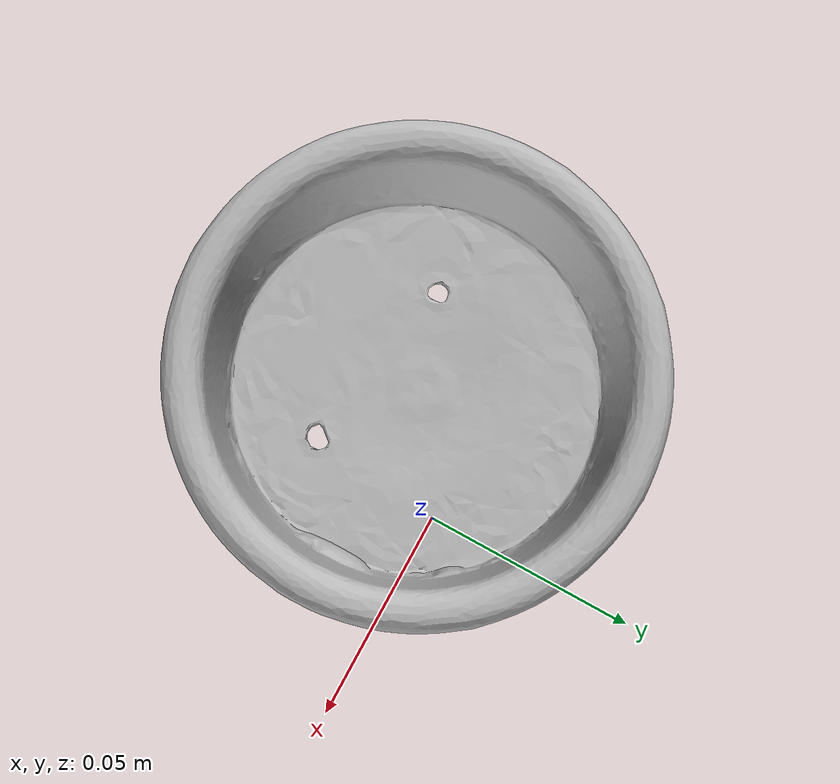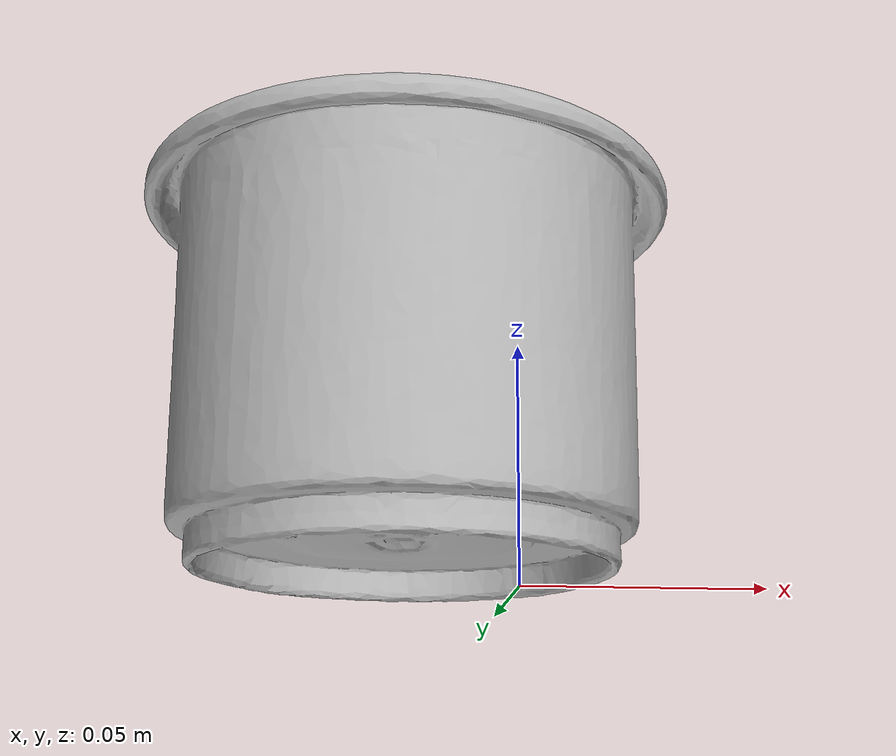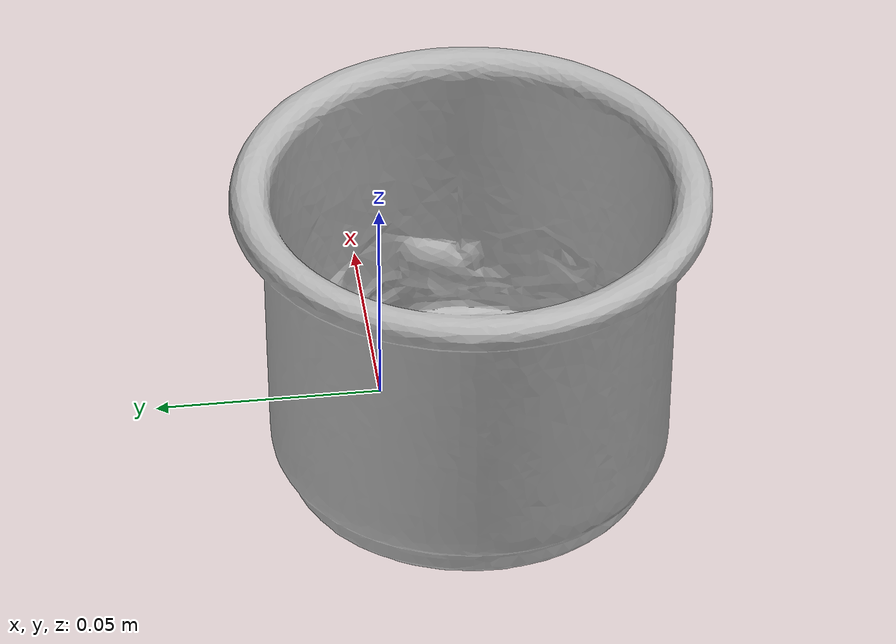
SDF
<?xml version='1.0'?>
<sdf version="1.4">
  <model name="j_cups">
    <static>false</static>
    <link name="link">
      <inertial>
        <pose>-0.02316916577060105 -0.016288097645136355 0.036470255939330766 -0.449345901037277 -1.526630519609511 0.5216090305650638</pose>
        <mass>5.458626823715616e-05</mass>
        <inertia>
          <ixx>9.38953747492655e-08</ixx>
          <ixy>1.4803559516989554e-23</ixy>
          <ixz>-1.8095055368440213e-24</ixz>
          <iyy>8.166500601973393e-08</iyy>
          <iyz>1.2765421205790352e-24</iyz>
          <izz>8.064667762078227e-08</izz>
        </inertia>
      </inertial>
      <collision name="collision">
        <geometry>
          <mesh>
            <!-- Use a downsampled mesh for collisions -->
            <uri>model://065-j_cups/google_16k/065-j_cups.obj</uri>
            </mesh>
        </geometry>
        <surface>
          <friction>
            <ode>
              <mu>0.9</mu>
              <mu2>0.9</mu2>
            </ode>
          </friction>
          <contact>
            <ode>
              <kp>1000000000000.0</kp>
              <kd>1</kd>
              <min_depth>0.0001</min_depth>
              <max_vel>0.01</max_vel>
            </ode>
          </contact>
          <bounce>
            <restitution_coefficient>0.1</restitution_coefficient>
            <threshold>1000.0</threshold>
          </bounce>
        </surface>
      </collision>
      <visual name="visual">
        <geometry>
          <mesh>
            <uri>model://065-j_cups/google_16k/065-j_cups.dae</uri>
            </mesh>
        </geometry>
      </visual>
    </link>
  </model>
</sdf>
